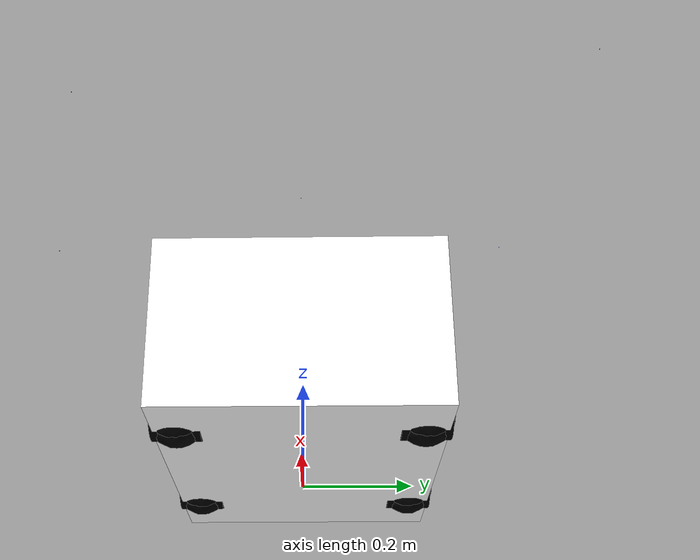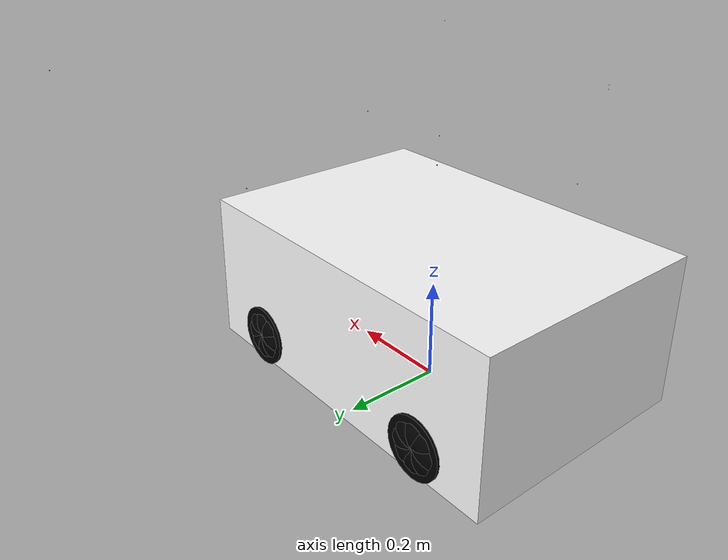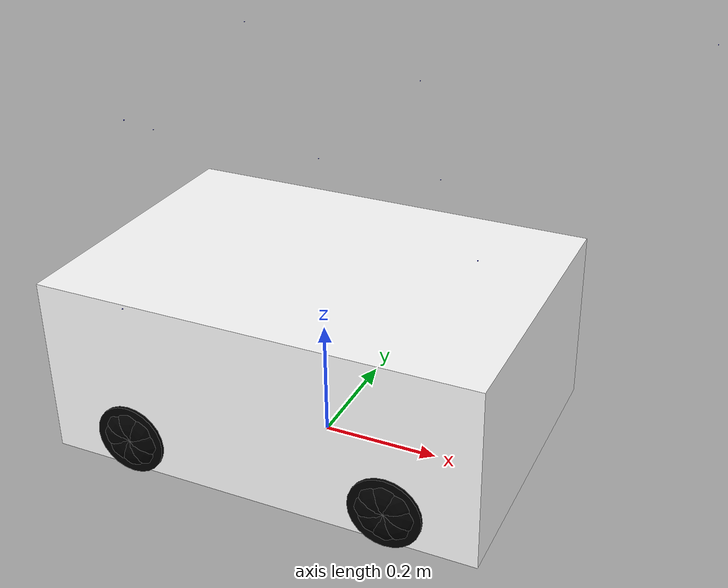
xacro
<?xml version="1.0"?>
<robot name="robot" xmlns:xacro="http://ros.org/wiki/xacro">
	<!-- General Macro -->
	<xacro:include filename="$(find config_robot)/urdf/lib/common.urdf.xacro" />
	<!-- Wheel Macro -->
	<xacro:include filename="$(find config_robot)/urdf/lib/wheel/mecanum_wheel.urdf.xacro" />
	<!-- Lidar Macro -->
	<xacro:include filename="$(find config_robot)/urdf/lib/sensor/block_lidar.urdf.xacro" />
	<!-- IMU Macro -->
	<xacro:include filename="$(find config_robot)/urdf/lib/sensor/block_imu.urdf.xacro" />

	<!-- PROPERTY LIST -->
	<!--All units in m-kg-s-radians unit system -->
	<xacro:property name="M_PI_2" value="${pi/2.0}" />

	<!-- AGV Base -->
	<xacro:property name="agv_base_height" value="0.3" />
	<xacro:property name="agv_base_lift" value="0.025" />
	<xacro:property name="agv_base_width" value="0.495" />
	<xacro:property name="agv_base_length" value="0.73" />
	<xacro:property name="agv_base_mass" value="40" />
	<xacro:property name="agv_wheel_height" value="0.07825" />

	<!-- AGV Wheel -->
	<xacro:property name="wheel_x" value="0.22" />
	<xacro:property name="wheel_y" value="0.21" />
	<xacro:property name="wheel_z" value="${-agv_base_height/2-agv_base_lift + agv_wheel_height}" />

	<!-- lidar -->
	<xacro:property name="lidar_x" value="0.0" />
	<xacro:property name="lidar_y" value="0.0" />
	<xacro:property name="lidar_z" value="0.4" />
	<xacro:property name="lidar_yaw" value="${pi}" />

	<!-- BASE-FOOTPRINT -->
	<!-- base_footprint is a fictitious link(frame) that is on the ground right below base_link origin -->
	<link name="base_footprint"/>

	<!-- AGV_BASE_LINK -->
	<joint name="base_footprint_agv_base_joint" type="fixed">
		<origin xyz="0 0 ${agv_base_height/2+agv_base_lift}" rpy="0 0 0" />
		<parent link="base_footprint"/>
		<child link="agv_base_link" />
	</joint>

	<link name="agv_base_link">
		<xacro:inertia_cuboid mass="${agv_base_mass}" d="${agv_base_length}" w="${agv_base_width}" h="${agv_base_height}" />
		<xacro:collision_cuboid length="${agv_base_length}" width="${agv_base_width}" height="${agv_base_height}" />
		<xacro:visual_cuboid length="${agv_base_length}" width="${agv_base_width}" height="${agv_base_height}" material="White" />
	</link>

	<!-- WHEELS -->
	<xacro:mecanum_wheel_a	name="wheel_front_left" parent="agv_base_link"
													xyz="${wheel_x} ${wheel_y} ${wheel_z}" rpy="${M_PI_2} 0 0" />
	<xacro:mecanum_wheel_b	name="wheel_front_right" parent="agv_base_link"
													xyz="${wheel_x} ${-wheel_y} ${wheel_z}" rpy="${-M_PI_2} 0 0" />
	<xacro:mecanum_wheel_b	name="wheel_back_left" parent="agv_base_link"
													xyz="${-wheel_x} ${wheel_y} ${wheel_z}" rpy="${M_PI_2} 0 0" />
	<xacro:mecanum_wheel_a	name="wheel_back_right" parent="agv_base_link"
													xyz="${-wheel_x} ${-wheel_y} ${wheel_z}" rpy="${-M_PI_2} 0 0" />

	<!-- lidar -->
	<xacro:block_lidar name="lidar_link" parent="base_footprint" xyz="${lidar_x} ${lidar_y} ${lidar_z}" rpy="0.0 0.0 ${lidar_yaw}" />

	<!-- imu link -->
	<joint name="agv_base_imu_link1_joint" type="fixed">
		<origin xyz="0 0 0.5" rpy="0 0 0" />
		<parent link="base_footprint"/>
		<child link="imu_link1" />
	</joint>

	<link name="imu_link1"/>

	<joint name="agv_base_imu_link2_joint" type="fixed">
		<origin xyz="0 0 0.6" rpy="0 0 0" />
		<parent link="base_footprint"/>
		<child link="imu_link2" />
	</joint>

	<link name="imu_link2"/>
	<!-- imu -->
	<xacro:block_imu name="center_imu" parent="base_footprint" xyz="0.0 0.0 0.5" rpy="0.0 0.0 0.0" />

	<xacro:block_imu name="imu_link1_0" parent="imu_link1" xyz="0.2 0.0 0.0" rpy="0.0 0.0 0.0" />
	<xacro:block_imu name="imu_link1_1" parent="imu_link1" xyz="-0.3 0.0 0.0" rpy="0.0 0.0 0.0" />
	<xacro:block_imu name="imu_link1_2" parent="imu_link1" xyz="0.0 0.4 0.0" rpy="0.0 0.0 0.0" />
	<xacro:block_imu name="imu_link1_3" parent="imu_link1" xyz="0.0 -0.5 0.0" rpy="0.0 0.0 0.0" />

	<xacro:block_imu name="imu_link2_0" parent="imu_link2" xyz="-0.2 -0.2 0.0" rpy="0.0 0.0 0.0" />
	<xacro:block_imu name="imu_link2_1" parent="imu_link2" xyz="-0.3 0.3 0.0" rpy="0.0 0.0 0.0" />
	<xacro:block_imu name="imu_link2_2" parent="imu_link2" xyz="0.4 -0.4 0.0" rpy="0.0 0.0 0.0" />
	<xacro:block_imu name="imu_link2_3" parent="imu_link2" xyz="0.5 0.5 0.0" rpy="0.0 0.0 0.0" />

</robot>

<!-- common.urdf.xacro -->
<robot xmlns:xacro="http://www.ros.org/wiki/xacro">
	<material name="Black">
		<color rgba="0.0 0.0 0.0 1.0"/>
	</material>

	<material name="Red">
		<color rgba="0.8 0.0 0.0 1.0"/>
	</material>

	<material name="White">
		<color rgba="1.0 1.0 1.0 1.0"/>
	</material>

	<material name="Blue">
		<color rgba="0.0 0.0 0.8 1.0"/>
	</material>

  <!-- Macro for calculating inertia of cylinder -->
	<xacro:macro name="inertia_cylinder" params="mass radius length xyz:='0 0 0' rpy:='0 0 0'">
		<inertial>
			<origin xyz="${xyz}" rpy="${rpy}"/>
			<mass value="${mass}"/>
			<inertia	ixx="${mass*(3*radius*radius+length*length)/12}" ixy = "0" ixz = "0"
								iyy="${mass*(3*radius*radius+length*length)/12}" iyz = "0"
								izz="${mass*radius*radius/2}" />
		</inertial>
	</xacro:macro>

  <!-- Macro for calculating inertia of sphere -->
	<xacro:macro name="inertia_sphere" params="radius rho:=1000 xyz:='0 0 0' rpy:='0 0 0'">
		<xacro:property name="mass" value="${4/3*rho*pi*radius**3}"/>
		<inertial>
			<origin xyz="${xyz}" rpy="${rpy}"/>
			<mass value="${mass}"/>
			<inertia	ixx="${(2/5*mass)*(radius**2)}" ixy="0" ixz="0"
								iyy="${(2/5*mass)*(radius**2)}"  iyz="0"
								izz="${(2/5*mass)*(radius**2)}" />
		</inertial>
	</xacro:macro>

	<!-- Macro for calculating inertia of cube -->
	<xacro:macro name="inertia_cuboid" params="mass w d h xyz:='0 0 0' rpy:='0 0 0'">
	<inertial>
		<origin xyz="${xyz}" rpy="${rpy}"/>
		<mass value="${mass}"/>
		<inertia	ixx="${mass*(h*h+d*d)/12}" ixy = "0" ixz = "0"
							iyy="${mass*(w*w+d*d)/12}" iyz = "0"
							izz="${mass*(w*w+h*h)/12}" />
		</inertial>
	</xacro:macro>

	<xacro:macro name="collision_cylinder" params="radius length xyz:='0 0 0' rpy:='0 0 0'">
		<collision>
			<origin xyz="${xyz}" rpy="${rpy}"/>
			<geometry>
				<cylinder radius="${radius}" length="${length}" />
			</geometry>
		</collision>
	</xacro:macro>

	<xacro:macro name="collision_sphere" params="radius xyz:='0 0 0' rpy:='0 0 0'">
		<collision>
			<origin xyz="${xyz}" rpy="${rpy}"/>
			<geometry>
				<sphere radius="${radius}"/>
			</geometry>
		</collision>
	</xacro:macro>

	<xacro:macro name="collision_cuboid" params="length width height xyz:='0 0 0' rpy:='0 0 0'">
		<collision>
			<origin xyz="0 0 0" rpy="0 0 0" />
			<geometry>
				<box size="${length} ${width} ${height}" />
			</geometry>
		</collision>
	</xacro:macro>

	<xacro:macro name="visual_sphere" params="radius xyz:='0 0 0' rpy:='0 0 0' material:='Black'">
		<visual>
			<origin xyz="${xyz}" rpy="${rpy}"/>
			<geometry>
				<sphere radius="${radius}"/>
			</geometry>
			<material name="${material}" />
		</visual>
	</xacro:macro>

	<xacro:macro name="visual_cylinder" params="radius length xyz:='0 0 0' rpy:='0 0 0' material:='Black'">
		<visual>
			<origin xyz="${xyz}" rpy="${rpy}"/>
			<geometry>
				<cylinder radius="${radius}" length="${length}" />
			</geometry>
			<material name="${material}" />
		</visual>
	</xacro:macro>

	<xacro:macro name="visual_cuboid" params="length width height xyz:='0 0 0' rpy:='0 0 0' material:='Black'">
		<visual>
			<origin xyz="0 0 0" rpy="0 0 0" />
			<geometry>
				<box size="${length} ${width} ${height}" />
			</geometry>
			<material name="${material}" />
		</visual>
	</xacro:macro>
</robot>

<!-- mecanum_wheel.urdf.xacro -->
<robot xmlns:xacro="http://www.ros.org/wiki/xacro">
  <xacro:macro name="roller" params="wheel_name num roller_angle N radius roller_bottom_offset">
		<xacro:property name="axis_offset" value="${roller_bottom_offset + radius}"/>
		<xacro:property name="angle" value="${2*num*N*pi}"/>

		<joint name="roller_${wheel_name}_${num}_joint" type="continuous">
			<origin xyz="${cos(angle)*axis_offset} ${-sin(angle)*axis_offset} 0" rpy="${roller_angle} 0.0 ${-2.0*num*pi*N}"/>
			<axis xyz="0 0 0" />
			<parent link="${wheel_name}"/>
			<child link="roller_${wheel_name}_${num}"/>
			<dynamics damping="0.01" friction="0.0" />
		</joint>

		<link name="roller_${wheel_name}_${num}">
			<xacro:visual_sphere rpy="0 0 0" radius="${radius}"/>
			<xacro:collision_sphere xyz="0 0 0" radius="${radius}"/>
			<xacro:inertia_sphere rpy="0 0 0" radius="${radius}"/>
		</link>
	</xacro:macro>

	<xacro:macro name="mecanum_wheel" params="wheel_name parent roller_angle xyz:='0 0 0' rpy:='0 0 0'">
		<xacro:property name="wheel_radius" value="0.07825"/>
		<xacro:property name="core_radius" value="${wheel_radius * 0.76}"/>
		<xacro:property name="length" value="0.085"/>
		<xacro:property name="roller_radius" value="0.05"/>
		<xacro:property name="mass" value="2.1"/>
		<xacro:property name="num_of_roller" value="${1.0/8.0}"/>

		<joint name="${wheel_name}_joint" type="continuous">
			<axis xyz="0 0 1" />
			<origin xyz="${xyz}" rpy="${rpy}" />
			<parent link="${parent}" />
			<child link="${wheel_name}" />
			<dynamics damping="0.01" friction="0.0" />
		</joint>

		<link name="${wheel_name}">
			<xacro:inertia_cylinder mass="${mass}" radius="${core_radius}" length="${length}" />
			<xacro:collision_cylinder radius="${core_radius}" length="${length}" />
			<xacro:visual_cylinder radius="${core_radius}" length="${length}" />
		</link>

		<xacro:roller	wheel_name="${name}" num="0" roller_angle="${roller_angle}" N="${num_of_roller}" radius="${roller_radius}"
									roller_bottom_offset="${-(wheel_radius - roller_radius)}" />
		<xacro:roller	wheel_name="${name}" num="1" roller_angle="${roller_angle}" N="${num_of_roller}" radius="${roller_radius}"
									roller_bottom_offset="${-(wheel_radius - roller_radius)}" />
		<xacro:roller	wheel_name="${name}" num="2" roller_angle="${roller_angle}" N="${num_of_roller}" radius="${roller_radius}"
									roller_bottom_offset="${-(wheel_radius - roller_radius)}" />
		<xacro:roller	wheel_name="${name}" num="3" roller_angle="${roller_angle}" N="${num_of_roller}" radius="${roller_radius}"
									roller_bottom_offset="${-(wheel_radius - roller_radius)}" />
		<xacro:roller	wheel_name="${name}" num="4" roller_angle="${roller_angle}" N="${num_of_roller}" radius="${roller_radius}"
									roller_bottom_offset="${-(wheel_radius - roller_radius)}" />
		<xacro:roller	wheel_name="${name}" num="5" roller_angle="${roller_angle}" N="${num_of_roller}" radius="${roller_radius}"
									roller_bottom_offset="${-(wheel_radius - roller_radius)}" />
		<xacro:roller	wheel_name="${name}" num="6" roller_angle="${roller_angle}" N="${num_of_roller}" radius="${roller_radius}"
									roller_bottom_offset="${-(wheel_radius - roller_radius)}" />
		<xacro:roller	wheel_name="${name}" num="7" roller_angle="${roller_angle}" N="${num_of_roller}" radius="${roller_radius}"
									roller_bottom_offset="${-(wheel_radius - roller_radius)}" />
	</xacro:macro>

  <xacro:macro name="mecanum_wheel_a" params="name parent xyz:='0 0 0' rpy:='0 0 0'">
		<xacro:mecanum_wheel wheel_name="${name}" parent="${parent}" xyz="${xyz}" rpy="${rpy}" roller_angle="${-pi/4.0}" />
  </xacro:macro>

	<xacro:macro name="mecanum_wheel_b" params="name parent xyz:='0 0 0' rpy:='0 0 0'">
		<xacro:mecanum_wheel wheel_name="${name}" parent="${parent}" xyz="${xyz}" rpy="${rpy}" roller_angle="${pi/4.0}" />
  </xacro:macro>
</robot>

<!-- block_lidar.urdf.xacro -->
<robot xmlns:xacro="http://www.ros.org/wiki/xacro">
	<!-- lidar -->
	<xacro:property name="lidar_size" value="0.01" />

	<xacro:macro name="lidar_gazebo" params="name">
		<gazebo reference="${name}">
			<sensor type="ray" name="${name}">
				<pose>0 0 0 0 0 0</pose>
				<visualize>true</visualize>
				<update_rate>40</update_rate>
				<ray>
					<scan>
						<horizontal>
							<samples>720</samples>
							<resolution>1</resolution>
							<min_angle>${-pi}</min_angle>
							<max_angle>${pi}</max_angle>
						</horizontal>
					</scan>
					<noise>
						<type>gaussian</type>
						<mean>0.0</mean>
						<stddev>0.01</stddev>
					</noise>
					<range>
						<min>0.45</min>
						<max>100.0</max>
						<resolution>0.001</resolution>
					</range>
				</ray>
				<plugin name="gazebo_ros_base_laser_controller" filename="libgazebo_ros_laser.so">
					<topicName>/scan</topicName>
					<frameName>${name}</frameName>
				</plugin>
    	</sensor>

		</gazebo>
	</xacro:macro>

	<xacro:macro name="block_lidar" params="name parent xyz:='0 0 0' rpy:='0 0 0'">
		<joint name="${name}_joint" type="fixed">
			<origin xyz="${xyz}" rpy="${rpy}" />
			<parent link="${parent}" />
			<child link="${name}" />
		</joint>

		<link name="${name}">
		</link>
	</xacro:macro>
</robot>

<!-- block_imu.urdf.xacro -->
<robot xmlns:xacro="http://www.ros.org/wiki/xacro">
	<!-- lidar -->
	<xacro:property name="imu_size" value="0.001" />

	<xacro:macro name="imu_gazebo" params="name hz:=100.0">
		<gazebo reference="${name}">
			<gravity>true</gravity>
			<sensor type="imu" name="${name}">
				<always_on>true</always_on>
				<update_rate>${hz}</update_rate>
				<visualize>true</visualize>
				<topic>__default_topic__</topic>
				<plugin filename="libgazebo_ros_imu_sensor.so" name="imu_plugin">
					<topicName>${name}</topicName>
					<bodyName>${name}</bodyName>
					<updateRateHZ>${hz}</updateRateHZ>
					<gaussianNoise>0.0</gaussianNoise>
					<xyzOffset>0 0 0</xyzOffset>
					<rpyOffset>0 0 0</rpyOffset>
					<frameName>${name}</frameName>
					<initialOrientationAsReference>false</initialOrientationAsReference>
				</plugin>
				<pose>0 0 0 0 0 0</pose>
			</sensor>
		</gazebo>
	</xacro:macro>

	<xacro:macro name="block_imu" params="name parent xyz:='0 0 0' rpy:='0 0 0'">
		<joint name="${name}_joint" type="fixed">
			<origin xyz="${xyz}" rpy="${rpy}" />
			<parent link="${parent}" />
			<child link="${name}" />
		</joint>

		<link name="${name}">
			<xacro:inertia_cuboid mass="0.01" d="${imu_size}" w="${imu_size}" h="${imu_size}" />
			<xacro:collision_cuboid length="${imu_size}" width="${imu_size}" height="${imu_size}" />
			<xacro:visual_cuboid length="${imu_size}" width="${imu_size}" height="${imu_size}"  material="Blue" />
		</link>
	</xacro:macro>
</robot>
